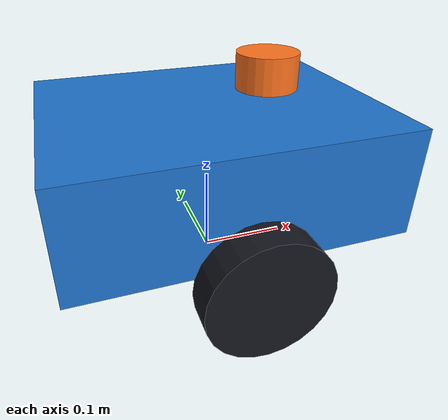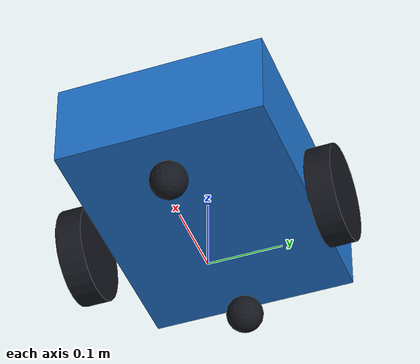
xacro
<?xml version="1.0"?>
<robot name="course_bot" xmlns:xacro="http://www.ros.org/wiki/xacro">
  <xacro:arg name="controllers_file" default="$(find course_bot)/config/controllers.yaml"/>
  <xacro:property name="wheel_radius" value="0.065"/>
  <xacro:property name="wheel_width" value="0.035"/>
  <material name="blue"><color rgba="0.12 0.45 0.8 1"/></material>
  <material name="black"><color rgba="0.08 0.09 0.12 1"/></material>
  <material name="orange"><color rgba="1 0.45 0.12 1"/></material>

  <link name="base_footprint"/>
  <joint name="base_joint" type="fixed">
    <parent link="base_footprint"/><child link="base_link"/>
    <origin xyz="0 0 0.13"/>
  </joint>
  <link name="base_link">
    <visual><geometry><box size="0.36 0.28 0.12"/></geometry><material name="blue"/></visual>
    <collision><geometry><box size="0.36 0.28 0.12"/></geometry></collision>
    <inertial>
      <mass value="3.0"/>
      <inertia ixx="${3.0*(0.28**2+0.12**2)/12}" iyy="${3.0*(0.36**2+0.12**2)/12}" izz="${3.0*(0.36**2+0.28**2)/12}" ixy="0" ixz="0" iyz="0"/>
    </inertial>
  </link>

  <xacro:macro name="wheel" params="side position">
    <link name="${side}_wheel_link">
      <visual>
        <origin rpy="${pi/2} 0 0"/>
        <geometry><cylinder radius="${wheel_radius}" length="${wheel_width}"/></geometry>
        <material name="black"/>
      </visual>
      <collision>
        <origin rpy="${pi/2} 0 0"/>
        <geometry><cylinder radius="${wheel_radius}" length="${wheel_width}"/></geometry>
      </collision>
      <inertial>
        <mass value="0.2"/>
        <inertia ixx="${0.2*(3*wheel_radius**2+wheel_width**2)/12}" iyy="${0.2*wheel_radius**2/2}" izz="${0.2*(3*wheel_radius**2+wheel_width**2)/12}" ixy="0" ixz="0" iyz="0"/>
      </inertial>
    </link>
    <joint name="${side}_wheel_joint" type="continuous">
      <parent link="base_link"/><child link="${side}_wheel_link"/>
      <origin xyz="0 ${position} -0.065"/>
      <axis xyz="0 1 0"/>
      <limit effort="5" velocity="15"/>
      <dynamics damping="0.01" friction="0.0"/>
    </joint>
    <gazebo reference="${side}_wheel_link"><mu1>1.0</mu1><mu2>1.0</mu2></gazebo>
  </xacro:macro>
  <xacro:wheel side="left" position="0.17"/>
  <xacro:wheel side="right" position="-0.17"/>

  <xacro:macro name="caster" params="name position">
    <link name="${name}_caster_link">
      <visual><geometry><sphere radius="0.025"/></geometry><material name="black"/></visual>
      <collision><geometry><sphere radius="0.025"/></geometry></collision>
      <inertial><mass value="0.05"/><inertia ixx="0.0000125" iyy="0.0000125" izz="0.0000125" ixy="0" ixz="0" iyz="0"/></inertial>
    </link>
    <joint name="${name}_caster_joint" type="fixed">
      <parent link="base_link"/><child link="${name}_caster_link"/>
      <origin xyz="${position} 0 -0.105"/>
    </joint>
    <gazebo reference="${name}_caster_link"><mu1>0.001</mu1><mu2>0.001</mu2></gazebo>
  </xacro:macro>
  <xacro:caster name="front" position="0.14"/>
  <xacro:caster name="rear" position="-0.14"/>

  <link name="laser_link">
    <visual><geometry><cylinder radius="0.035" length="0.04"/></geometry><material name="orange"/></visual>
    <collision><geometry><cylinder radius="0.035" length="0.04"/></geometry></collision>
    <inertial><mass value="0.1"/><inertia ixx="0.00005" iyy="0.00005" izz="0.00006" ixy="0" ixz="0" iyz="0"/></inertial>
  </link>
  <joint name="laser_joint" type="fixed">
    <parent link="base_link"/><child link="laser_link"/><origin xyz="0.07 0 0.09"/>
  </joint>
  <link name="imu_link">
    <inertial><mass value="0.01"/><inertia ixx="0.000001" iyy="0.000001" izz="0.000001" ixy="0" ixz="0" iyz="0"/></inertial>
  </link>
  <joint name="imu_joint" type="fixed">
    <parent link="base_link"/><child link="imu_link"/><origin xyz="0 0 0"/>
  </joint>

  <gazebo reference="laser_link">
    <sensor name="laser" type="gpu_lidar">
      <always_on>true</always_on><update_rate>10</update_rate><visualize>false</visualize>
      <topic>/scan</topic><gz_frame_id>laser_link</gz_frame_id>
      <lidar>
        <scan><horizontal><samples>360</samples><resolution>1</resolution><min_angle>${-pi}</min_angle><max_angle>${pi}</max_angle></horizontal></scan>
        <range><min>0.12</min><max>10.0</max><resolution>0.01</resolution></range>
        <noise><type>gaussian</type><mean>0</mean><stddev>0.005</stddev></noise>
      </lidar>
    </sensor>
  </gazebo>
  <gazebo reference="imu_link">
    <sensor name="imu" type="imu">
      <always_on>true</always_on><update_rate>50</update_rate>
      <topic>/imu</topic><gz_frame_id>imu_link</gz_frame_id>
    </sensor>
  </gazebo>

  <ros2_control name="GazeboSimSystem" type="system">
    <hardware><plugin>gz_ros2_control/GazeboSimSystem</plugin></hardware>
    <joint name="left_wheel_joint">
      <command_interface name="velocity"><param name="min">-15</param><param name="max">15</param></command_interface>
      <state_interface name="position"/><state_interface name="velocity"/>
    </joint>
    <joint name="right_wheel_joint">
      <command_interface name="velocity"><param name="min">-15</param><param name="max">15</param></command_interface>
      <state_interface name="position"/><state_interface name="velocity"/>
    </joint>
  </ros2_control>
  <gazebo>
    <plugin filename="gz_ros2_control-system" name="gz_ros2_control::GazeboSimROS2ControlPlugin">
      <parameters>$(arg controllers_file)</parameters>
      <ros><remapping>/diff_drive_controller/odom:=/odom</remapping></ros>
    </plugin>
  </gazebo>
</robot>
